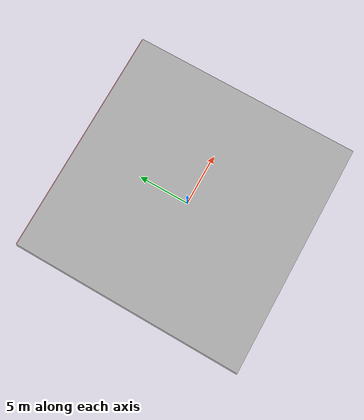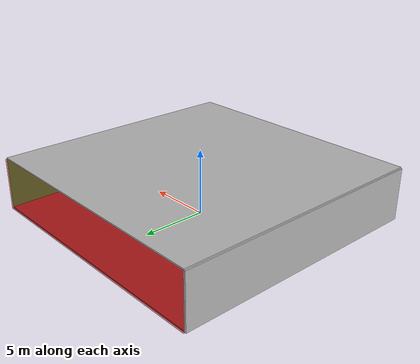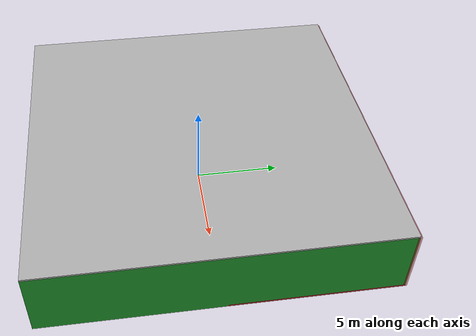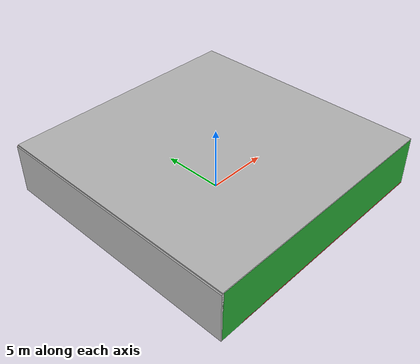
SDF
<sdf version="1.4">
 <world name="default">
  <physics type="ode">
   <max_step_size>0.001</max_step_size>
   <real_time_factor>1</real_time_factor>
   <real_time_update_rate>1000</real_time_update_rate>
   <gravity>0 0 -9.8</gravity>
  </physics>
  <scene><ambient>0.4 0.4 0.4 1</ambient><background>0.7 0.7 0.7 1</background><shadows>1</shadows></scene>
  <model name="Surrounding">
   <static>1</static>
   <link name="Ceiling">
    <collision name="Ceiling_Collision"><geometry><box><size>20 20 0.1</size></box></geometry></collision>
    <visual name="Ceiling_Visual">
     <geometry><box><size>20 20 0.1</size></box></geometry>
     <material>
      <script><uri>file://media/materials/scripts/gazebo.material</uri><name>Gazebo/LightOn</name></script>
     </material>
    </visual>
    <pose>0 0 4.05 0 0 0</pose>
   </link>
   <link name="Wall_South">
    <collision name="Wall_South_Collision">
     <geometry><box><size>20 0 4</size></box></geometry>
     <pose>0 0 2 0 -0 0</pose>
    </collision>
    <visual name="Wall_South_Visual">
     <pose>0 0 2 0 -0 0</pose>
     <geometry><box><size>20 0 4</size></box></geometry>
     <material>
      <script><uri>file://media/materials/scripts/gazebo.material</uri><name>Gazebo/GreenGlow</name></script>
     </material>
    </visual>
    <velocity_decay><linear>0</linear><angular>0</angular></velocity_decay>
    <pose>0 -10 0 0 -0 0</pose>
   </link>
   <link name="Wall_East">
    <collision name="Wall_21_Collision">
     <geometry><box><size>20 0 4</size></box></geometry>
     <pose>0 0 2 0 -0 0</pose>
    </collision>
    <visual name="Wall_21_Visual">
     <pose>0 0 2 0 -0 0</pose>
     <geometry><box><size>20 0 4</size></box></geometry>
     <material>
      <script><uri>file://media/materials/scripts/gazebo.material</uri><name>Gazebo/GreenGlow</name></script>
     </material>
    </visual>
    <velocity_decay><linear>0</linear><angular>0</angular></velocity_decay>
    <pose>10 0 0 0 -0 1.5708</pose>
   </link>
   <link name="Wall_North">
    <collision name="Wall_22_Collision">
     <geometry><box><size>20 0.2 4</size></box></geometry>
     <pose>0 0 2 0 -0 0</pose>
    </collision>
    <visual name="Wall_22_Visual">
     <pose>0 0 2 0 -0 0</pose>
     <geometry><box><size>20 0.2 4</size></box></geometry>
     <material>
      <script><uri>file://media/materials/scripts/gazebo.material</uri><name>Gazebo/RedTransparent</name></script>
     </material>
    </visual>
    <velocity_decay><linear>0</linear><angular>0</angular></velocity_decay>
    <pose>0 10 0 0 -0 0</pose>
   </link>
   <link name="Wall_West">
    <collision name="Wall_23_Collision">
     <geometry><box><size>20 0.2 4</size></box></geometry>
     <pose>0 0 2 0 -0 0</pose>
    </collision>
    <visual name="Wall_23_Visual">
     <pose>0 0 2 0 -0 0</pose>
     <geometry><box><size>20 0.2 4</size></box></geometry>
     <material>
      <script><uri>file://media/materials/scripts/gazebo.material</uri><name>Gazebo/LightOn</name></script>
     </material>
    </visual>
    <velocity_decay><linear>0</linear><angular>0</angular></velocity_decay>
    <pose>-10 0 0 0 0 -1.5708</pose>
   </link>
   <link name="Ground_link">
    <collision name="collision">
     <pose>0 0 .05 0 -0 0</pose>
     <geometry><box><size>20 20 0.1</size></box></geometry>
    </collision>
    <visual name="visual">
     <pose>0 0 .05 0 -0 0</pose>
     <geometry><box><size>20 20 0.1</size></box></geometry>
     <material>
      <script><uri>file://media/materials/scripts/gazebo.material</uri><name>Gazebo/RedGlow</name></script>
     </material>
    </visual>
   </link>
   <static>1</static>
  </model>
  <spherical_coordinates>
   <surface_model>EARTH_WGS84</surface_model>
   <latitude_deg>0</latitude_deg>
   <longitude_deg>0</longitude_deg>
   <elevation>0</elevation>
   <heading_deg>0</heading_deg>
  </spherical_coordinates>
  <light name="lightball_0" type="diffuse">
   <diffuse>0.8 0.8 0.8 1</diffuse>
   <specular>0.2 0.2 0.2 1</specular>
   <attenuation>
    <range>100</range>
    <constant>0.7</constant>
    <linear>0.01</linear>
    <quadratic>0.001</quadratic>
   </attenuation>
   <direction>-0.5 0.1 -0.9</direction>
   <pose>-2.09465108469 -9.38915835594 0.708472161495 0 0 0</pose>
  </light>
  <light name="lightball_1" type="diffuse">
   <diffuse>0.8 0.8 0.8 1</diffuse>
   <specular>0.2 0.2 0.2 1</specular>
   <attenuation>
    <range>100</range>
    <constant>0.7</constant>
    <linear>0.01</linear>
    <quadratic>0.001</quadratic>
   </attenuation>
   <direction>-0.5 0.1 -0.9</direction>
   <pose>7.89972666016 -5.20967975111 1.36856447271 0 0 0</pose>
  </light>
  <light name="lightball_2" type="diffuse">
   <diffuse>0.8 0.8 0.8 1</diffuse>
   <specular>0.2 0.2 0.2 1</specular>
   <attenuation>
    <range>100</range>
    <constant>0.7</constant>
    <linear>0.01</linear>
    <quadratic>0.001</quadratic>
   </attenuation>
   <direction>-0.5 0.1 -0.9</direction>
   <pose>-7.33740735495 -5.39372344814 2.45331155452 0 0 0</pose>
  </light>
  <light name="lightball_3" type="diffuse">
   <diffuse>0.8 0.8 0.8 1</diffuse>
   <specular>0.2 0.2 0.2 1</specular>
   <attenuation>
    <range>100</range>
    <constant>0.7</constant>
    <linear>0.01</linear>
    <quadratic>0.001</quadratic>
   </attenuation>
   <direction>-0.5 0.1 -0.9</direction>
   <pose>-4.87581158866 2.44456395371 3.75247121063 0 0 0</pose>
  </light>
  <light name="lightball_4" type="diffuse">
   <diffuse>0.8 0.8 0.8 1</diffuse>
   <specular>0.2 0.2 0.2 1</specular>
   <attenuation>
    <range>100</range>
    <constant>0.7</constant>
    <linear>0.01</linear>
    <quadratic>0.001</quadratic>
   </attenuation>
   <direction>-0.5 0.1 -0.9</direction>
   <pose>3.28276012338 -1.45805380765 3.52872564807 0 0 0</pose>
  </light>
  <light name="lightball_5" type="diffuse">
   <diffuse>0.8 0.8 0.8 1</diffuse>
   <specular>0.2 0.2 0.2 1</specular>
   <attenuation>
    <range>100</range>
    <constant>0.7</constant>
    <linear>0.01</linear>
    <quadratic>0.001</quadratic>
   </attenuation>
   <direction>-0.5 0.1 -0.9</direction>
   <pose>6.30263950528 -7.71270371578 3.10610015223 0 0 0</pose>
  </light>
  <light name="lightball_6" type="diffuse">
   <diffuse>0.8 0.8 0.8 1</diffuse>
   <specular>0.2 0.2 0.2 1</specular>
   <attenuation>
    <range>100</range>
    <constant>0.7</constant>
    <linear>0.01</linear>
    <quadratic>0.001</quadratic>
   </attenuation>
   <direction>-0.5 0.1 -0.9</direction>
   <pose>7.54870504782 -4.42773906925 1.85795885424 0 0 0</pose>
  </light>
  <light name="lightball_7" type="diffuse">
   <diffuse>0.8 0.8 0.8 1</diffuse>
   <specular>0.2 0.2 0.2 1</specular>
   <attenuation>
    <range>100</range>
    <constant>0.7</constant>
    <linear>0.01</linear>
    <quadratic>0.001</quadratic>
   </attenuation>
   <direction>-0.5 0.1 -0.9</direction>
   <pose>6.59320473118 -6.13607216724 1.73958950403 0 0 0</pose>
  </light>
  <light name="lightball_8" type="diffuse">
   <diffuse>0.8 0.8 0.8 1</diffuse>
   <specular>0.2 0.2 0.2 1</specular>
   <attenuation>
    <range>100</range>
    <constant>0.7</constant>
    <linear>0.01</linear>
    <quadratic>0.001</quadratic>
   </attenuation>
   <direction>-0.5 0.1 -0.9</direction>
   <pose>-2.23675149414 4.0639914781 0.913444456001 0 0 0</pose>
  </light>
  <light name="lightball_9" type="diffuse">
   <diffuse>0.8 0.8 0.8 1</diffuse>
   <specular>0.2 0.2 0.2 1</specular>
   <attenuation>
    <range>100</range>
    <constant>0.7</constant>
    <linear>0.01</linear>
    <quadratic>0.001</quadratic>
   </attenuation>
   <direction>-0.5 0.1 -0.9</direction>
   <pose>-4.01516064976 -7.77144101568 0.744283965033 0 0 0</pose>
  </light>
  <light name="lightball_10" type="diffuse">
   <diffuse>0.8 0.8 0.8 1</diffuse>
   <specular>0.2 0.2 0.2 1</specular>
   <attenuation>
    <range>100</range>
    <constant>0.7</constant>
    <linear>0.01</linear>
    <quadratic>0.001</quadratic>
   </attenuation>
   <direction>-0.5 0.1 -0.9</direction>
   <pose>-6.11605084557 1.34901530252 0.511919091221 0 0 0</pose>
  </light>
  <light name="lightball_11" type="diffuse">
   <diffuse>0.8 0.8 0.8 1</diffuse>
   <specular>0.2 0.2 0.2 1</specular>
   <attenuation>
    <range>100</range>
    <constant>0.7</constant>
    <linear>0.01</linear>
    <quadratic>0.001</quadratic>
   </attenuation>
   <direction>-0.5 0.1 -0.9</direction>
   <pose>6.51659523152 2.0528972749 0.631941040376 0 0 0</pose>
  </light>
  <include><uri>model://cabinet</uri><pose>-7.29415408793 -1.77992722109 0 0 0 0.537499938273</pose></include>
  <include><uri>model://cabinet</uri><pose>-4.77208387324 -3.73677090352 0 0 0 1.00733647723</pose></include>
  <include><uri>model://table</uri><pose>6.91726015081 -5.44049101919 0 0 0 1.1474553511</pose></include>
 </world>
</sdf>

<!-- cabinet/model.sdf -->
<sdf version="1.5">
  <model name="cabinet">
    <static>true</static>
    <link name="cabinet_bottom_plate">
      <inertial>
        <pose>0 0 -1 0 0 0</pose>
        <inertia>
          <ixx>2.050000</ixx>
          <ixy>0</ixy>
          <ixz>0</ixz>
          <iyy>2.050000</iyy>
          <iyz>0</iyz>
          <izz>2.050000</izz>
        </inertia>
        <mass>25.000000</mass>
      </inertial>
      <collision name="cabinet_bottom_plate_geom">
        <pose>0 0 0.010000 0 0 0</pose>
        <geometry>
          <box>
            <size>0.450000 0.450000 0.020000</size>
          </box>
        </geometry>
      </collision>
      <visual name="cabinet_bottom_plate_geom_visual">
        <pose>0 0 0.010000 0 0 0</pose>
        <geometry>
          <box>
            <size>0.450000 0.450000 0.020000</size>
          </box>
        </geometry>
        <material>
          <script>
            <uri>model://media/materials/scripts/gazebo.material</uri>
            <name>Gazebo/Wood</name>
          </script>
        </material>
      </visual>
      <collision name="cabinet_bottom_plate_geom_cabinet_back_plate">
        <pose>0.235000 0 0.510000 0 0 0</pose>
        <geometry>
          <box>
            <size>0.020000 0.450000 1.020000</size>
          </box>
        </geometry>
      </collision>
      <visual name="cabinet_bottom_plate_geom_cabinet_back_plate_visual">
        <pose>0.235000 0 0.510000 0 0 0</pose>
        <geometry>
          <box>
            <size>0.020000 0.450000 1.020000</size>
          </box>
        </geometry>
        <material>
          <script>
            <uri>model://media/materials/scripts/gazebo.material</uri>
            <name>Gazebo/Wood</name>
          </script>
        </material>
      </visual>
      <collision name="cabinet_bottom_plate_geom_cabinet_left_plate">
        <pose>0 0.235000 0.510000 0 0 0</pose>
        <geometry>
          <box>
            <size>0.450000 0.020000 1.020000</size>
          </box>
        </geometry>
      </collision>
      <visual name="cabinet_bottom_plate_geom_cabinet_left_plate_visual">
        <pose>0 0.235000 0.510000 0 0 0</pose>
        <geometry>
          <box>
            <size>0.450000 0.020000 1.020000</size>
          </box>
        </geometry>
        <material>
          <script>
            <uri>model://media/materials/scripts/gazebo.material</uri>
            <name>Gazebo/Wood</name>
          </script>
        </material>
      </visual>
      <collision name="cabinet_bottom_plate_geom_cabinet_middle_plate">
        <pose>0 0 0.510000 0 0 0</pose>
        <geometry>
          <box>
            <size>0.450000 0.450000 0.020000</size>
          </box>
        </geometry>
      </collision>
      <visual name="cabinet_bottom_plate_geom_cabinet_middle_plate_visual">
        <pose>0 0 0.510000 0 0 0</pose>
        <geometry>
          <box>
            <size>0.450000 0.450000 0.020000</size>
          </box>
        </geometry>
        <material>
          <script>
            <uri>model://media/materials/scripts/gazebo.material</uri>
            <name>Gazebo/Wood</name>
          </script>
        </material>
      </visual>
      <collision name="cabinet_bottom_plate_geom_cabinet_right_plate">
        <pose>0 -0.235000 0.510000 0 0 0</pose>
        <geometry>
          <box>
            <size>0.450000 0.020000 1.020000</size>
          </box>
        </geometry>
      </collision>
      <visual name="cabinet_bottom_plate_geom_cabinet_right_plate_visual">
        <pose>0 -0.235000 0.510000 0 0 0</pose>
        <geometry>
          <box>
            <size>0.450000 0.020000 1.020000</size>
          </box>
        </geometry>
        <material>
          <script>
            <uri>model://media/materials/scripts/gazebo.material</uri>
            <name>Gazebo/Wood</name>
          </script>
        </material>
      </visual>
      <collision name="cabinet_bottom_plate_geom_cabinet_top_plate">
        <pose>0 0 1.010000 0 0 0</pose>
        <geometry>
          <box>
            <size>0.450000 0.450000 0.020000</size>
          </box>
        </geometry>
      </collision>
      <visual name="cabinet_bottom_plate_geom_cabinet_top_plate_visual">
        <pose>0 0 1.010000 0 0 0</pose>
        <geometry>
          <box>
            <size>0.450000 0.450000 0.020000</size>
          </box>
        </geometry>
        <material>
          <script>
            <uri>model://media/materials/scripts/gazebo.material</uri>
            <name>Gazebo/Wood</name>
          </script>
        </material>
      </visual>
    </link>
  </model>
</sdf>

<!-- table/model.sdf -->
<sdf version="1.5">
  <model name="table">
    <static>true</static>
    <link name="link">
      <collision name="surface">
        <pose>0 0 1.0 0 0 0</pose>
        <geometry>
          <box>
            <size>1.5 0.8 0.03</size>
          </box>
        </geometry>
        <surface>
          <friction>
            <ode>
              <mu>0.6</mu>
              <mu2>0.6</mu2>
            </ode>
          </friction>
        </surface>
      </collision>
      <visual name="visual1">
        <pose>0 0 1.0 0 0 0</pose>
        <geometry>
          <box>
            <size>1.5 0.8 0.03</size>
          </box>
        </geometry>
        <material>
          <script>
            <uri>model://media/materials/scripts/gazebo.material</uri>
            <name>Gazebo/Wood</name>
          </script>
        </material>
      </visual>
      <collision name="front_left_leg">
        <pose>0.68 0.38 0.5 0 0 0</pose>
        <geometry>
          <cylinder>
            <radius>0.02</radius>
            <length>1.0</length>
          </cylinder>
        </geometry>
      </collision>
      <visual name="front_left_leg">
        <pose>0.68 0.38 0.5 0 0 0</pose>
        <geometry>
          <cylinder>
            <radius>0.02</radius>
            <length>1.0</length>
          </cylinder>
        </geometry>
        <material>
          <script>
            <uri>model://media/materials/scripts/gazebo.material</uri>
            <name>Gazebo/Grey</name>
          </script>
        </material>
      </visual>
      <collision name="front_right_leg">
        <pose>0.68 -0.38 0.5 0 0 0</pose>
        <geometry>
          <cylinder>
            <radius>0.02</radius>
            <length>1.0</length>
          </cylinder>
        </geometry>
      </collision>
      <visual name="front_right_leg">
        <pose>0.68 -0.38 0.5 0 0 0</pose>
        <geometry>
          <cylinder>
            <radius>0.02</radius>
            <length>1.0</length>
          </cylinder>
        </geometry>
        <material>
          <script>
            <uri>model://media/materials/scripts/gazebo.material</uri>
            <name>Gazebo/Grey</name>
          </script>
        </material>
      </visual>
      <collision name="back_right_leg">
        <pose>-0.68 -0.38 0.5 0 0 0</pose>
        <geometry>
          <cylinder>
            <radius>0.02</radius>
            <length>1.0</length>
          </cylinder>
        </geometry>
      </collision>
      <visual name="back_right_leg">
        <pose>-0.68 -0.38 0.5 0 0 0</pose>
        <geometry>
          <cylinder>
            <radius>0.02</radius>
            <length>1.0</length>
          </cylinder>
        </geometry>
        <material>
          <script>
            <uri>model://media/materials/scripts/gazebo.material</uri>
            <name>Gazebo/Grey</name>
          </script>
        </material>
      </visual>
      <collision name="back_left_leg">
        <pose>-0.68 0.38 0.5 0 0 0</pose>
        <geometry>
          <cylinder>
            <radius>0.02</radius>
            <length>1.0</length>
          </cylinder>
        </geometry>
      </collision>
      <visual name="back_left_leg">
        <pose>-0.68 0.38 0.5 0 0 0</pose>
        <geometry>
          <cylinder>
            <radius>0.02</radius>
            <length>1.0</length>
          </cylinder>
        </geometry>
        <material>
          <script>
            <uri>model://media/materials/scripts/gazebo.material</uri>
            <name>Gazebo/Grey</name>
          </script>
        </material>
      </visual>
    </link>
  </model>
</sdf>
